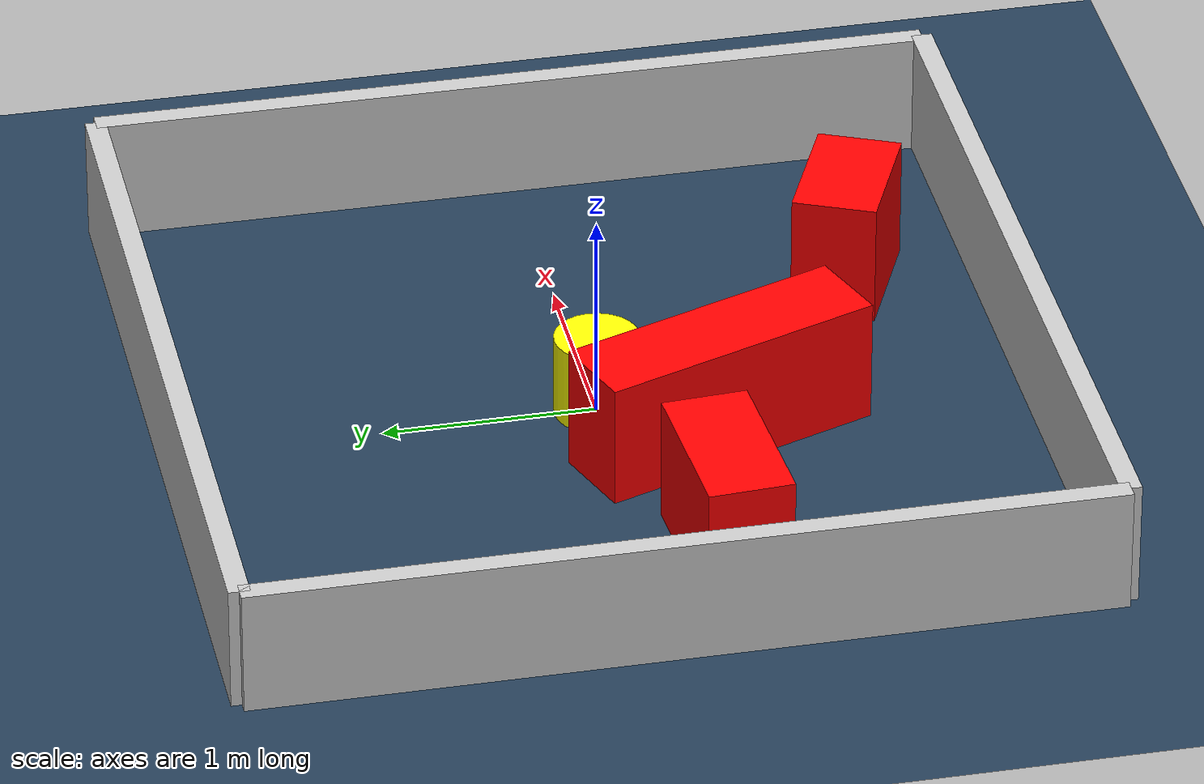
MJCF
<?xml version="1.0" ?>
<mujoco model="generated_environment">
  <option timestep="0.01" integrator="RK4" cone="elliptic"/>
  <default>
    <geom density="1"/>
  </default>
  <asset>
    <texture builtin="gradient" height="3072" rgb1="0.3 0.5 0.7" rgb2="0 0 0" type="skybox" width="512"/>
    <texture builtin="checker" height="300" mark="edge" markrgb="0.8 0.8 0.8" name="groundplane" rgb1="0.2 0.3 0.4" rgb2="0.1 0.2 0.3" type="2d" width="300"/>
    <material name="groundplane" reflectance="0.2" texrepeat="5 5" texture="groundplane" texuniform="true"/>
    <material name="robot" rgba="0.0 1.0 0.0 1"/>
  </asset>
  <worldbody>
    <light dir="0 0 -1" directional="true" pos="0 0 1.5"/>
    <geom condim="4" friction="1.0 0.005 0.001" material="groundplane" name="floor" size="0 0 0.05" type="plane"/>
    <body name="walls">
      <geom name="wall_1" condim="4" pos="-2.0 0.0 0.3" rgba="0.800000011920929 0.800000011920929 0.800000011920929 1.0" size="0.05 2.0 0.3" type="box"/>
      <geom name="wall_2" condim="4" pos="2.0 0.0 0.3" rgba="0.800000011920929 0.800000011920929 0.800000011920929 1.0" size="0.05 2.0 0.3" type="box"/>
      <geom name="wall_3" condim="4" pos="0.0 -2.0 0.3" rgba="0.800000011920929 0.800000011920929 0.800000011920929 1.0" size="2.0 0.05 0.3" type="box"/>
      <geom name="wall_4" condim="4" pos="0.0 2.0 0.3" rgba="0.800000011920929 0.800000011920929 0.800000011920929 1.0" size="2.0 0.05 0.3" type="box"/>
    </body>
    <body name="robot">
      <joint name="joint_x" type="slide" pos="0 0 0" axis="1 0 0"/>
      <joint name="joint_y" type="slide" pos="0 0 0" axis="0 1 0"/>
      <geom name="robot" type="sphere" pos="0.3 0.0 0.2" size="0.05" mass="5." friction="1.0 0.005 0.0001" condim="4" rgba="0.5 0.5 0.5 1.0"/>
      <site name="sensor_ball"/>
    </body>
    <body name="obstacle_movable_1">
      <geom name="obstacle_movable_1" condim="4" pos="0.0 0.0 0.2" euler="0 0 0.0" friction="1.0 0.005 0.001" rgba="1.0 1.0 0.0 1.0" size="0.2 0.2 0.0" type="cylinder" mass="0.1"/>
      <joint type="free"/>
    </body>
    <body name="obstacle_2_static">
      <geom name="obstacle_2_static" condim="4" pos="-0.35183163547587093 -0.5038731831587457 0.3" euler="0 0 290.1522313700405" friction="1.0 0.005 0.001" rgba="1 0 0 1" size="0.6926609836214238 0.2 0.3" type="box"/>
    </body>
    <body name="obstacle_3_static">
      <geom name="obstacle_3_static" condim="4" pos="-1.2846679726522638 -0.3313960754449803 0.3" euler="0 0 3.504436524901" friction="1.0 0.005 0.001" rgba="1 0 0 1" size="0.394708891164177 0.2 0.3" type="box"/>
    </body>
    <body name="obstacle_4_static">
      <geom name="obstacle_4_static" condim="4" pos="0.8456363581683481 -1.3678621487468612 0.3" euler="0 0 335.9108974494596" friction="1.0 0.005 0.001" rgba="1 0 0 1" size="0.31511869491407735 0.2 0.3" type="box"/>
    </body>
  </worldbody>
  <actuator>
    <motor name="actuator_x" joint="joint_x" gear="1" ctrlrange="-1 1"/>
    <motor name="actuator_y" joint="joint_y" gear="1" ctrlrange="-1 1"/>
  </actuator>
</mujoco>
